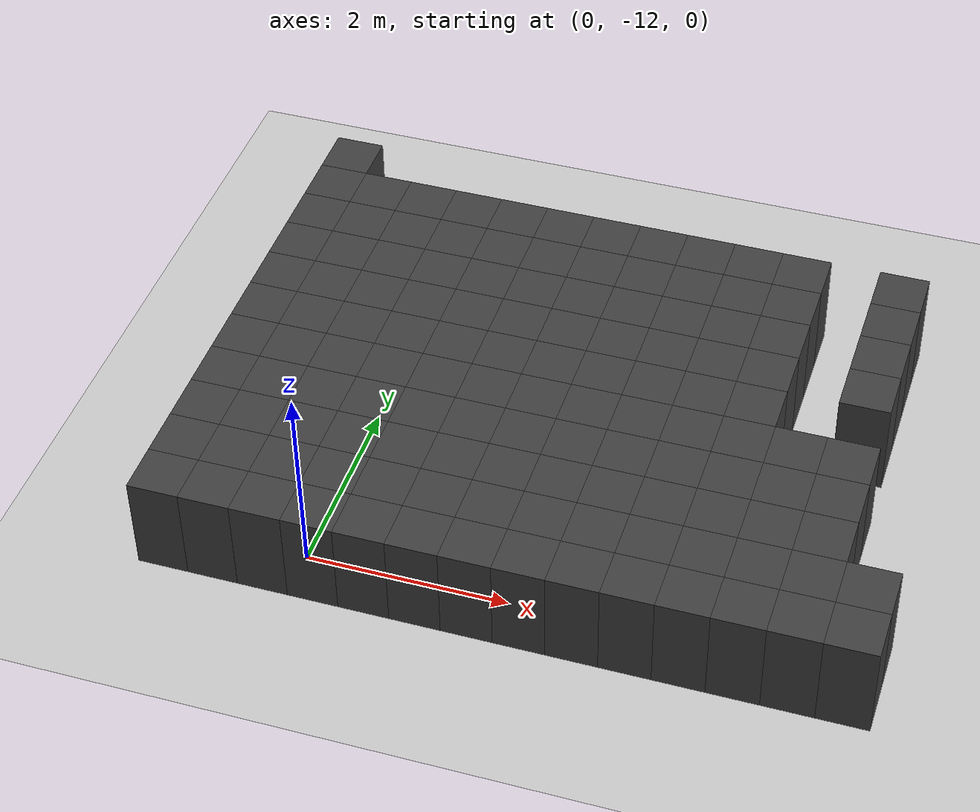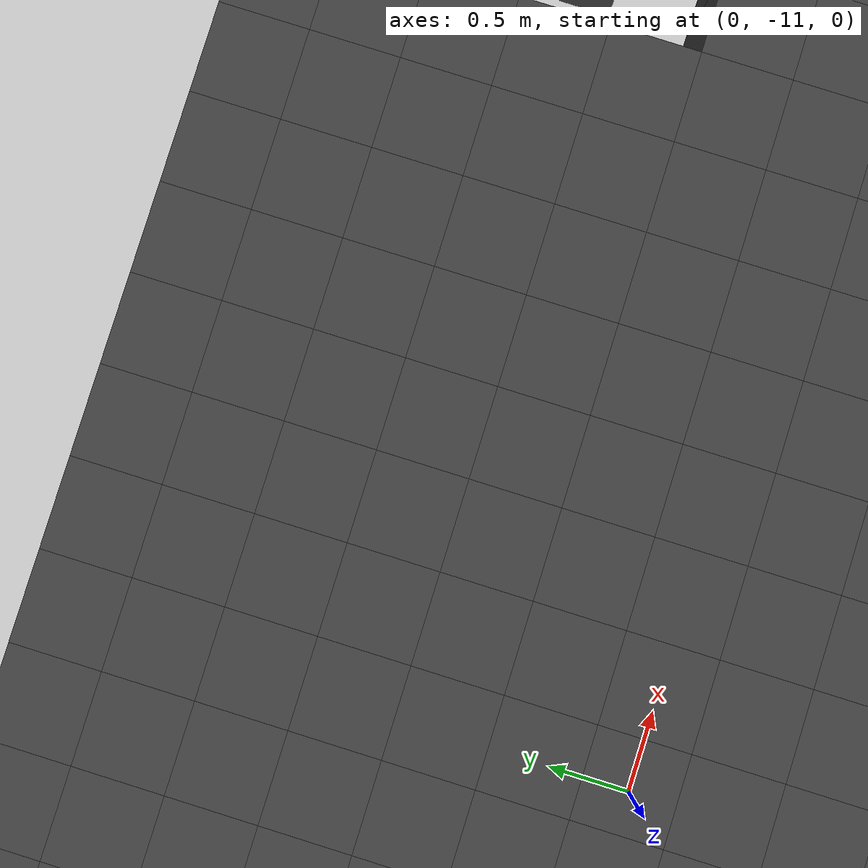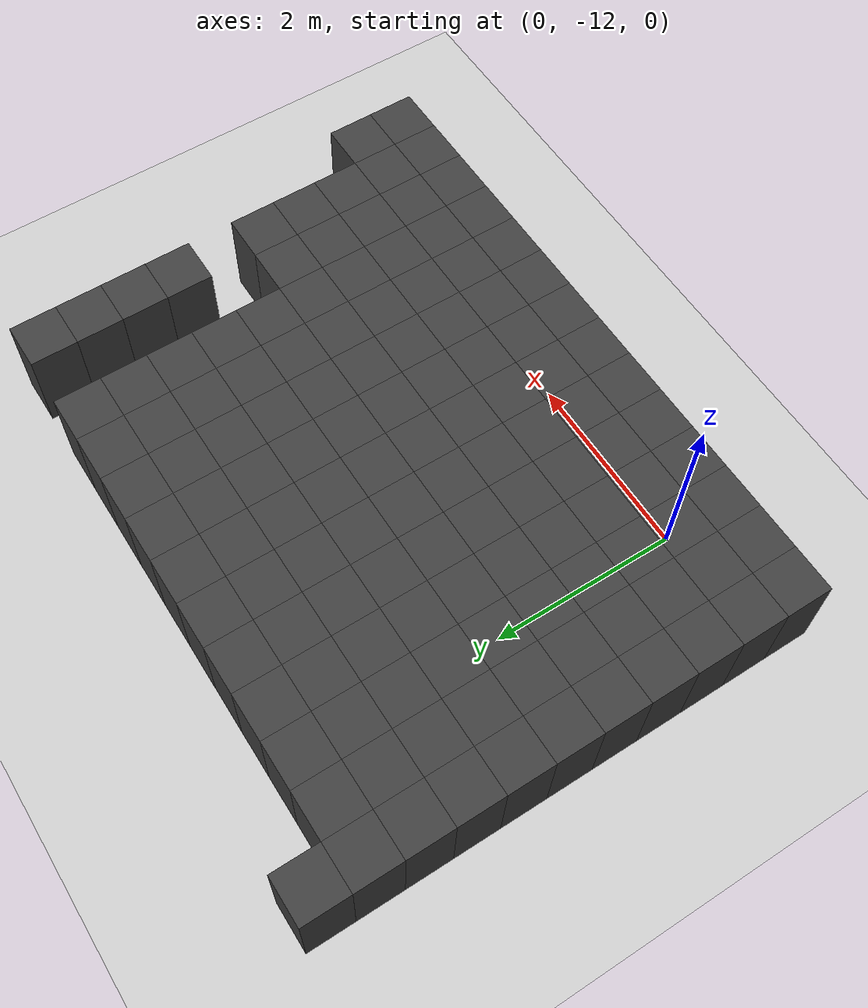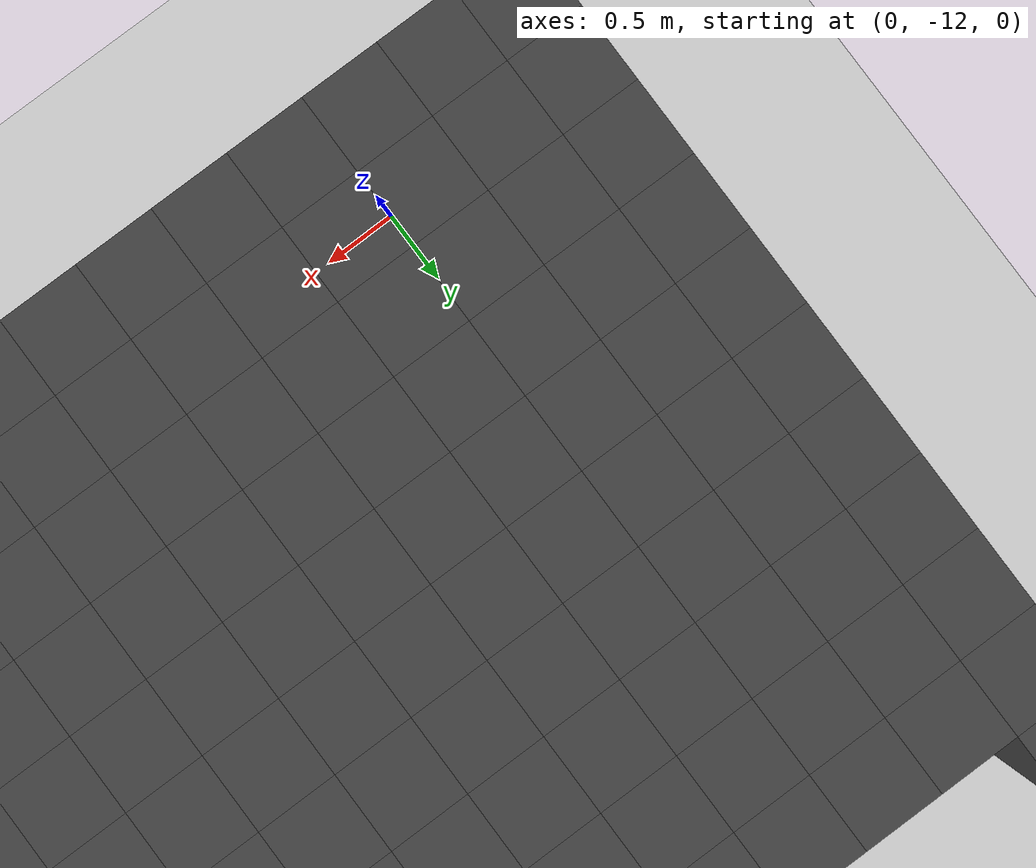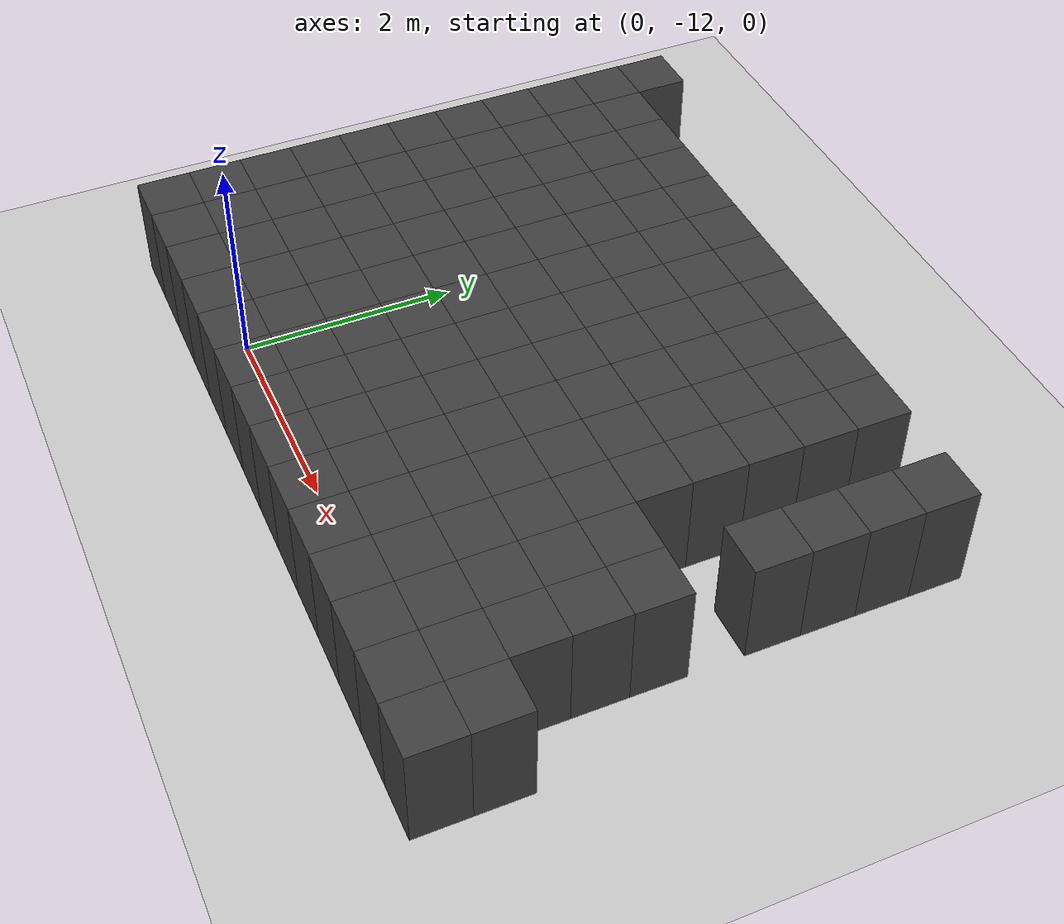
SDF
<sdf version="1.7">
 <world name="map_10777">
  <model name="ground_plane">
   <static>true</static>
   <link name="link">
    <collision name="collision">
     <geometry><plane><normal>0 0 1</normal><size>200 200</size></plane></geometry>
    </collision>
    <visual name="visual">
     <geometry><plane><normal>0 0 1</normal><size>200 200</size></plane></geometry>
     <material><ambient>0.8 0.8 0.8 1</ambient><diffuse>0.8 0.8 0.8 1</diffuse></material>
    </visual>
   </link>
  </model>
  <model name="maze_environment">
   <static>true</static>
   <link name="wall_1711">
    <pose>-1.250 -7.250 0.500 0 0 0</pose>
    <collision name="col"><geometry><box><size>0.5 0.5 1.0</size></box></geometry></collision>
    <visual name="vis">
     <geometry><box><size>0.5 0.5 1.0</size></box></geometry>
     <material><ambient>0.15 0.15 0.15 1</ambient><diffuse>0.25 0.25 0.25 1</diffuse></material>
    </visual>
   </link>
   <link name="wall_1754">
    <pose>-1.250 -7.750 0.500 0 0 0</pose>
    <collision name="col"><geometry><box><size>0.5 0.5 1.0</size></box></geometry></collision>
    <visual name="vis">
     <geometry><box><size>0.5 0.5 1.0</size></box></geometry>
     <material><ambient>0.15 0.15 0.15 1</ambient><diffuse>0.25 0.25 0.25 1</diffuse></material>
    </visual>
   </link>
   <link name="wall_1755">
    <pose>-0.750 -7.750 0.500 0 0 0</pose>
    <collision name="col"><geometry><box><size>0.5 0.5 1.0</size></box></geometry></collision>
    <visual name="vis">
     <geometry><box><size>0.5 0.5 1.0</size></box></geometry>
     <material><ambient>0.15 0.15 0.15 1</ambient><diffuse>0.25 0.25 0.25 1</diffuse></material>
    </visual>
   </link>
   <link name="wall_1756">
    <pose>-0.250 -7.750 0.500 0 0 0</pose>
    <collision name="col"><geometry><box><size>0.5 0.5 1.0</size></box></geometry></collision>
    <visual name="vis">
     <geometry><box><size>0.5 0.5 1.0</size></box></geometry>
     <material><ambient>0.15 0.15 0.15 1</ambient><diffuse>0.25 0.25 0.25 1</diffuse></material>
    </visual>
   </link>
   <link name="wall_1757">
    <pose>0.250 -7.750 0.500 0 0 0</pose>
    <collision name="col"><geometry><box><size>0.5 0.5 1.0</size></box></geometry></collision>
    <visual name="vis">
     <geometry><box><size>0.5 0.5 1.0</size></box></geometry>
     <material><ambient>0.15 0.15 0.15 1</ambient><diffuse>0.25 0.25 0.25 1</diffuse></material>
    </visual>
   </link>
   <link name="wall_1758">
    <pose>0.750 -7.750 0.500 0 0 0</pose>
    <collision name="col"><geometry><box><size>0.5 0.5 1.0</size></box></geometry></collision>
    <visual name="vis">
     <geometry><box><size>0.5 0.5 1.0</size></box></geometry>
     <material><ambient>0.15 0.15 0.15 1</ambient><diffuse>0.25 0.25 0.25 1</diffuse></material>
    </visual>
   </link>
   <link name="wall_1759">
    <pose>1.250 -7.750 0.500 0 0 0</pose>
    <collision name="col"><geometry><box><size>0.5 0.5 1.0</size></box></geometry></collision>
    <visual name="vis">
     <geometry><box><size>0.5 0.5 1.0</size></box></geometry>
     <material><ambient>0.15 0.15 0.15 1</ambient><diffuse>0.25 0.25 0.25 1</diffuse></material>
    </visual>
   </link>
   <link name="wall_1760">
    <pose>1.750 -7.750 0.500 0 0 0</pose>
    <collision name="col"><geometry><box><size>0.5 0.5 1.0</size></box></geometry></collision>
    <visual name="vis">
     <geometry><box><size>0.5 0.5 1.0</size></box></geometry>
     <material><ambient>0.15 0.15 0.15 1</ambient><diffuse>0.25 0.25 0.25 1</diffuse></material>
    </visual>
   </link>
   <link name="wall_1761">
    <pose>2.250 -7.750 0.500 0 0 0</pose>
    <collision name="col"><geometry><box><size>0.5 0.5 1.0</size></box></geometry></collision>
    <visual name="vis">
     <geometry><box><size>0.5 0.5 1.0</size></box></geometry>
     <material><ambient>0.15 0.15 0.15 1</ambient><diffuse>0.25 0.25 0.25 1</diffuse></material>
    </visual>
   </link>
   <link name="wall_1762">
    <pose>2.750 -7.750 0.500 0 0 0</pose>
    <collision name="col"><geometry><box><size>0.5 0.5 1.0</size></box></geometry></collision>
    <visual name="vis">
     <geometry><box><size>0.5 0.5 1.0</size></box></geometry>
     <material><ambient>0.15 0.15 0.15 1</ambient><diffuse>0.25 0.25 0.25 1</diffuse></material>
    </visual>
   </link>
   <link name="wall_1763">
    <pose>3.250 -7.750 0.500 0 0 0</pose>
    <collision name="col"><geometry><box><size>0.5 0.5 1.0</size></box></geometry></collision>
    <visual name="vis">
     <geometry><box><size>0.5 0.5 1.0</size></box></geometry>
     <material><ambient>0.15 0.15 0.15 1</ambient><diffuse>0.25 0.25 0.25 1</diffuse></material>
    </visual>
   </link>
   <link name="wall_1764">
    <pose>3.750 -7.750 0.500 0 0 0</pose>
    <collision name="col"><geometry><box><size>0.5 0.5 1.0</size></box></geometry></collision>
    <visual name="vis">
     <geometry><box><size>0.5 0.5 1.0</size></box></geometry>
     <material><ambient>0.15 0.15 0.15 1</ambient><diffuse>0.25 0.25 0.25 1</diffuse></material>
    </visual>
   </link>
   <link name="wall_1765">
    <pose>4.750 -7.750 0.500 0 0 0</pose>
    <collision name="col"><geometry><box><size>0.5 0.5 1.0</size></box></geometry></collision>
    <visual name="vis">
     <geometry><box><size>0.5 0.5 1.0</size></box></geometry>
     <material><ambient>0.15 0.15 0.15 1</ambient><diffuse>0.25 0.25 0.25 1</diffuse></material>
    </visual>
   </link>
   <link name="wall_1796">
    <pose>-1.250 -8.250 0.500 0 0 0</pose>
    <collision name="col"><geometry><box><size>0.5 0.5 1.0</size></box></geometry></collision>
    <visual name="vis">
     <geometry><box><size>0.5 0.5 1.0</size></box></geometry>
     <material><ambient>0.15 0.15 0.15 1</ambient><diffuse>0.25 0.25 0.25 1</diffuse></material>
    </visual>
   </link>
   <link name="wall_1797">
    <pose>-0.750 -8.250 0.500 0 0 0</pose>
    <collision name="col"><geometry><box><size>0.5 0.5 1.0</size></box></geometry></collision>
    <visual name="vis">
     <geometry><box><size>0.5 0.5 1.0</size></box></geometry>
     <material><ambient>0.15 0.15 0.15 1</ambient><diffuse>0.25 0.25 0.25 1</diffuse></material>
    </visual>
   </link>
   <link name="wall_1798">
    <pose>-0.250 -8.250 0.500 0 0 0</pose>
    <collision name="col"><geometry><box><size>0.5 0.5 1.0</size></box></geometry></collision>
    <visual name="vis">
     <geometry><box><size>0.5 0.5 1.0</size></box></geometry>
     <material><ambient>0.15 0.15 0.15 1</ambient><diffuse>0.25 0.25 0.25 1</diffuse></material>
    </visual>
   </link>
   <link name="wall_1799">
    <pose>0.250 -8.250 0.500 0 0 0</pose>
    <collision name="col"><geometry><box><size>0.5 0.5 1.0</size></box></geometry></collision>
    <visual name="vis">
     <geometry><box><size>0.5 0.5 1.0</size></box></geometry>
     <material><ambient>0.15 0.15 0.15 1</ambient><diffuse>0.25 0.25 0.25 1</diffuse></material>
    </visual>
   </link>
   <link name="wall_1800">
    <pose>0.750 -8.250 0.500 0 0 0</pose>
    <collision name="col"><geometry><box><size>0.5 0.5 1.0</size></box></geometry></collision>
    <visual name="vis">
     <geometry><box><size>0.5 0.5 1.0</size></box></geometry>
     <material><ambient>0.15 0.15 0.15 1</ambient><diffuse>0.25 0.25 0.25 1</diffuse></material>
    </visual>
   </link>
   <link name="wall_1801">
    <pose>1.250 -8.250 0.500 0 0 0</pose>
    <collision name="col"><geometry><box><size>0.5 0.5 1.0</size></box></geometry></collision>
    <visual name="vis">
     <geometry><box><size>0.5 0.5 1.0</size></box></geometry>
     <material><ambient>0.15 0.15 0.15 1</ambient><diffuse>0.25 0.25 0.25 1</diffuse></material>
    </visual>
   </link>
   <link name="wall_1802">
    <pose>1.750 -8.250 0.500 0 0 0</pose>
    <collision name="col"><geometry><box><size>0.5 0.5 1.0</size></box></geometry></collision>
    <visual name="vis">
     <geometry><box><size>0.5 0.5 1.0</size></box></geometry>
     <material><ambient>0.15 0.15 0.15 1</ambient><diffuse>0.25 0.25 0.25 1</diffuse></material>
    </visual>
   </link>
   <link name="wall_1803">
    <pose>2.250 -8.250 0.500 0 0 0</pose>
    <collision name="col"><geometry><box><size>0.5 0.5 1.0</size></box></geometry></collision>
    <visual name="vis">
     <geometry><box><size>0.5 0.5 1.0</size></box></geometry>
     <material><ambient>0.15 0.15 0.15 1</ambient><diffuse>0.25 0.25 0.25 1</diffuse></material>
    </visual>
   </link>
   <link name="wall_1804">
    <pose>2.750 -8.250 0.500 0 0 0</pose>
    <collision name="col"><geometry><box><size>0.5 0.5 1.0</size></box></geometry></collision>
    <visual name="vis">
     <geometry><box><size>0.5 0.5 1.0</size></box></geometry>
     <material><ambient>0.15 0.15 0.15 1</ambient><diffuse>0.25 0.25 0.25 1</diffuse></material>
    </visual>
   </link>
   <link name="wall_1805">
    <pose>3.250 -8.250 0.500 0 0 0</pose>
    <collision name="col"><geometry><box><size>0.5 0.5 1.0</size></box></geometry></collision>
    <visual name="vis">
     <geometry><box><size>0.5 0.5 1.0</size></box></geometry>
     <material><ambient>0.15 0.15 0.15 1</ambient><diffuse>0.25 0.25 0.25 1</diffuse></material>
    </visual>
   </link>
   <link name="wall_1806">
    <pose>3.750 -8.250 0.500 0 0 0</pose>
    <collision name="col"><geometry><box><size>0.5 0.5 1.0</size></box></geometry></collision>
    <visual name="vis">
     <geometry><box><size>0.5 0.5 1.0</size></box></geometry>
     <material><ambient>0.15 0.15 0.15 1</ambient><diffuse>0.25 0.25 0.25 1</diffuse></material>
    </visual>
   </link>
   <link name="wall_1807">
    <pose>4.750 -8.250 0.500 0 0 0</pose>
    <collision name="col"><geometry><box><size>0.5 0.5 1.0</size></box></geometry></collision>
    <visual name="vis">
     <geometry><box><size>0.5 0.5 1.0</size></box></geometry>
     <material><ambient>0.15 0.15 0.15 1</ambient><diffuse>0.25 0.25 0.25 1</diffuse></material>
    </visual>
   </link>
   <link name="wall_1838">
    <pose>-1.250 -8.750 0.500 0 0 0</pose>
    <collision name="col"><geometry><box><size>0.5 0.5 1.0</size></box></geometry></collision>
    <visual name="vis">
     <geometry><box><size>0.5 0.5 1.0</size></box></geometry>
     <material><ambient>0.15 0.15 0.15 1</ambient><diffuse>0.25 0.25 0.25 1</diffuse></material>
    </visual>
   </link>
   <link name="wall_1839">
    <pose>-0.750 -8.750 0.500 0 0 0</pose>
    <collision name="col"><geometry><box><size>0.5 0.5 1.0</size></box></geometry></collision>
    <visual name="vis">
     <geometry><box><size>0.5 0.5 1.0</size></box></geometry>
     <material><ambient>0.15 0.15 0.15 1</ambient><diffuse>0.25 0.25 0.25 1</diffuse></material>
    </visual>
   </link>
   <link name="wall_1840">
    <pose>-0.250 -8.750 0.500 0 0 0</pose>
    <collision name="col"><geometry><box><size>0.5 0.5 1.0</size></box></geometry></collision>
    <visual name="vis">
     <geometry><box><size>0.5 0.5 1.0</size></box></geometry>
     <material><ambient>0.15 0.15 0.15 1</ambient><diffuse>0.25 0.25 0.25 1</diffuse></material>
    </visual>
   </link>
   <link name="wall_1841">
    <pose>0.250 -8.750 0.500 0 0 0</pose>
    <collision name="col"><geometry><box><size>0.5 0.5 1.0</size></box></geometry></collision>
    <visual name="vis">
     <geometry><box><size>0.5 0.5 1.0</size></box></geometry>
     <material><ambient>0.15 0.15 0.15 1</ambient><diffuse>0.25 0.25 0.25 1</diffuse></material>
    </visual>
   </link>
   <link name="wall_1842">
    <pose>0.750 -8.750 0.500 0 0 0</pose>
    <collision name="col"><geometry><box><size>0.5 0.5 1.0</size></box></geometry></collision>
    <visual name="vis">
     <geometry><box><size>0.5 0.5 1.0</size></box></geometry>
     <material><ambient>0.15 0.15 0.15 1</ambient><diffuse>0.25 0.25 0.25 1</diffuse></material>
    </visual>
   </link>
   <link name="wall_1843">
    <pose>1.250 -8.750 0.500 0 0 0</pose>
    <collision name="col"><geometry><box><size>0.5 0.5 1.0</size></box></geometry></collision>
    <visual name="vis">
     <geometry><box><size>0.5 0.5 1.0</size></box></geometry>
     <material><ambient>0.15 0.15 0.15 1</ambient><diffuse>0.25 0.25 0.25 1</diffuse></material>
    </visual>
   </link>
   <link name="wall_1844">
    <pose>1.750 -8.750 0.500 0 0 0</pose>
    <collision name="col"><geometry><box><size>0.5 0.5 1.0</size></box></geometry></collision>
    <visual name="vis">
     <geometry><box><size>0.5 0.5 1.0</size></box></geometry>
     <material><ambient>0.15 0.15 0.15 1</ambient><diffuse>0.25 0.25 0.25 1</diffuse></material>
    </visual>
   </link>
   <link name="wall_1845">
    <pose>2.250 -8.750 0.500 0 0 0</pose>
    <collision name="col"><geometry><box><size>0.5 0.5 1.0</size></box></geometry></collision>
    <visual name="vis">
     <geometry><box><size>0.5 0.5 1.0</size></box></geometry>
     <material><ambient>0.15 0.15 0.15 1</ambient><diffuse>0.25 0.25 0.25 1</diffuse></material>
    </visual>
   </link>
   <link name="wall_1846">
    <pose>2.750 -8.750 0.500 0 0 0</pose>
    <collision name="col"><geometry><box><size>0.5 0.5 1.0</size></box></geometry></collision>
    <visual name="vis">
     <geometry><box><size>0.5 0.5 1.0</size></box></geometry>
     <material><ambient>0.15 0.15 0.15 1</ambient><diffuse>0.25 0.25 0.25 1</diffuse></material>
    </visual>
   </link>
   <link name="wall_1847">
    <pose>3.250 -8.750 0.500 0 0 0</pose>
    <collision name="col"><geometry><box><size>0.5 0.5 1.0</size></box></geometry></collision>
    <visual name="vis">
     <geometry><box><size>0.5 0.5 1.0</size></box></geometry>
     <material><ambient>0.15 0.15 0.15 1</ambient><diffuse>0.25 0.25 0.25 1</diffuse></material>
    </visual>
   </link>
   <link name="wall_1848">
    <pose>3.750 -8.750 0.500 0 0 0</pose>
    <collision name="col"><geometry><box><size>0.5 0.5 1.0</size></box></geometry></collision>
    <visual name="vis">
     <geometry><box><size>0.5 0.5 1.0</size></box></geometry>
     <material><ambient>0.15 0.15 0.15 1</ambient><diffuse>0.25 0.25 0.25 1</diffuse></material>
    </visual>
   </link>
   <link name="wall_1849">
    <pose>4.750 -8.750 0.500 0 0 0</pose>
    <collision name="col"><geometry><box><size>0.5 0.5 1.0</size></box></geometry></collision>
    <visual name="vis">
     <geometry><box><size>0.5 0.5 1.0</size></box></geometry>
     <material><ambient>0.15 0.15 0.15 1</ambient><diffuse>0.25 0.25 0.25 1</diffuse></material>
    </visual>
   </link>
   <link name="wall_1880">
    <pose>-1.250 -9.250 0.500 0 0 0</pose>
    <collision name="col"><geometry><box><size>0.5 0.5 1.0</size></box></geometry></collision>
    <visual name="vis">
     <geometry><box><size>0.5 0.5 1.0</size></box></geometry>
     <material><ambient>0.15 0.15 0.15 1</ambient><diffuse>0.25 0.25 0.25 1</diffuse></material>
    </visual>
   </link>
   <link name="wall_1881">
    <pose>-0.750 -9.250 0.500 0 0 0</pose>
    <collision name="col"><geometry><box><size>0.5 0.5 1.0</size></box></geometry></collision>
    <visual name="vis">
     <geometry><box><size>0.5 0.5 1.0</size></box></geometry>
     <material><ambient>0.15 0.15 0.15 1</ambient><diffuse>0.25 0.25 0.25 1</diffuse></material>
    </visual>
   </link>
   <link name="wall_1882">
    <pose>-0.250 -9.250 0.500 0 0 0</pose>
    <collision name="col"><geometry><box><size>0.5 0.5 1.0</size></box></geometry></collision>
    <visual name="vis">
     <geometry><box><size>0.5 0.5 1.0</size></box></geometry>
     <material><ambient>0.15 0.15 0.15 1</ambient><diffuse>0.25 0.25 0.25 1</diffuse></material>
    </visual>
   </link>
   <link name="wall_1883">
    <pose>0.250 -9.250 0.500 0 0 0</pose>
    <collision name="col"><geometry><box><size>0.5 0.5 1.0</size></box></geometry></collision>
    <visual name="vis">
     <geometry><box><size>0.5 0.5 1.0</size></box></geometry>
     <material><ambient>0.15 0.15 0.15 1</ambient><diffuse>0.25 0.25 0.25 1</diffuse></material>
    </visual>
   </link>
   <link name="wall_1884">
    <pose>0.750 -9.250 0.500 0 0 0</pose>
    <collision name="col"><geometry><box><size>0.5 0.5 1.0</size></box></geometry></collision>
    <visual name="vis">
     <geometry><box><size>0.5 0.5 1.0</size></box></geometry>
     <material><ambient>0.15 0.15 0.15 1</ambient><diffuse>0.25 0.25 0.25 1</diffuse></material>
    </visual>
   </link>
   <link name="wall_1885">
    <pose>1.250 -9.250 0.500 0 0 0</pose>
    <collision name="col"><geometry><box><size>0.5 0.5 1.0</size></box></geometry></collision>
    <visual name="vis">
     <geometry><box><size>0.5 0.5 1.0</size></box></geometry>
     <material><ambient>0.15 0.15 0.15 1</ambient><diffuse>0.25 0.25 0.25 1</diffuse></material>
    </visual>
   </link>
   <link name="wall_1886">
    <pose>1.750 -9.250 0.500 0 0 0</pose>
    <collision name="col"><geometry><box><size>0.5 0.5 1.0</size></box></geometry></collision>
    <visual name="vis">
     <geometry><box><size>0.5 0.5 1.0</size></box></geometry>
     <material><ambient>0.15 0.15 0.15 1</ambient><diffuse>0.25 0.25 0.25 1</diffuse></material>
    </visual>
   </link>
   <link name="wall_1887">
    <pose>2.250 -9.250 0.500 0 0 0</pose>
    <collision name="col"><geometry><box><size>0.5 0.5 1.0</size></box></geometry></collision>
    <visual name="vis">
     <geometry><box><size>0.5 0.5 1.0</size></box></geometry>
     <material><ambient>0.15 0.15 0.15 1</ambient><diffuse>0.25 0.25 0.25 1</diffuse></material>
    </visual>
   </link>
   <link name="wall_1888">
    <pose>2.750 -9.250 0.500 0 0 0</pose>
    <collision name="col"><geometry><box><size>0.5 0.5 1.0</size></box></geometry></collision>
    <visual name="vis">
     <geometry><box><size>0.5 0.5 1.0</size></box></geometry>
     <material><ambient>0.15 0.15 0.15 1</ambient><diffuse>0.25 0.25 0.25 1</diffuse></material>
    </visual>
   </link>
   <link name="wall_1889">
    <pose>3.250 -9.250 0.500 0 0 0</pose>
    <collision name="col"><geometry><box><size>0.5 0.5 1.0</size></box></geometry></collision>
    <visual name="vis">
     <geometry><box><size>0.5 0.5 1.0</size></box></geometry>
     <material><ambient>0.15 0.15 0.15 1</ambient><diffuse>0.25 0.25 0.25 1</diffuse></material>
    </visual>
   </link>
   <link name="wall_1890">
    <pose>3.750 -9.250 0.500 0 0 0</pose>
    <collision name="col"><geometry><box><size>0.5 0.5 1.0</size></box></geometry></collision>
    <visual name="vis">
     <geometry><box><size>0.5 0.5 1.0</size></box></geometry>
     <material><ambient>0.15 0.15 0.15 1</ambient><diffuse>0.25 0.25 0.25 1</diffuse></material>
    </visual>
   </link>
   <link name="wall_1891">
    <pose>4.750 -9.250 0.500 0 0 0</pose>
    <collision name="col"><geometry><box><size>0.5 0.5 1.0</size></box></geometry></collision>
    <visual name="vis">
     <geometry><box><size>0.5 0.5 1.0</size></box></geometry>
     <material><ambient>0.15 0.15 0.15 1</ambient><diffuse>0.25 0.25 0.25 1</diffuse></material>
    </visual>
   </link>
   <link name="wall_1922">
    <pose>-1.250 -9.750 0.500 0 0 0</pose>
    <collision name="col"><geometry><box><size>0.5 0.5 1.0</size></box></geometry></collision>
    <visual name="vis">
     <geometry><box><size>0.5 0.5 1.0</size></box></geometry>
     <material><ambient>0.15 0.15 0.15 1</ambient><diffuse>0.25 0.25 0.25 1</diffuse></material>
    </visual>
   </link>
   <link name="wall_1923">
    <pose>-0.750 -9.750 0.500 0 0 0</pose>
    <collision name="col"><geometry><box><size>0.5 0.5 1.0</size></box></geometry></collision>
    <visual name="vis">
     <geometry><box><size>0.5 0.5 1.0</size></box></geometry>
     <material><ambient>0.15 0.15 0.15 1</ambient><diffuse>0.25 0.25 0.25 1</diffuse></material>
    </visual>
   </link>
   <link name="wall_1924">
    <pose>-0.250 -9.750 0.500 0 0 0</pose>
    <collision name="col"><geometry><box><size>0.5 0.5 1.0</size></box></geometry></collision>
    <visual name="vis">
     <geometry><box><size>0.5 0.5 1.0</size></box></geometry>
     <material><ambient>0.15 0.15 0.15 1</ambient><diffuse>0.25 0.25 0.25 1</diffuse></material>
    </visual>
   </link>
   <link name="wall_1925">
    <pose>0.250 -9.750 0.500 0 0 0</pose>
    <collision name="col"><geometry><box><size>0.5 0.5 1.0</size></box></geometry></collision>
    <visual name="vis">
     <geometry><box><size>0.5 0.5 1.0</size></box></geometry>
     <material><ambient>0.15 0.15 0.15 1</ambient><diffuse>0.25 0.25 0.25 1</diffuse></material>
    </visual>
   </link>
   <link name="wall_1926">
    <pose>0.750 -9.750 0.500 0 0 0</pose>
    <collision name="col"><geometry><box><size>0.5 0.5 1.0</size></box></geometry></collision>
    <visual name="vis">
     <geometry><box><size>0.5 0.5 1.0</size></box></geometry>
     <material><ambient>0.15 0.15 0.15 1</ambient><diffuse>0.25 0.25 0.25 1</diffuse></material>
    </visual>
   </link>
   <link name="wall_1927">
    <pose>1.250 -9.750 0.500 0 0 0</pose>
    <collision name="col"><geometry><box><size>0.5 0.5 1.0</size></box></geometry></collision>
    <visual name="vis">
     <geometry><box><size>0.5 0.5 1.0</size></box></geometry>
     <material><ambient>0.15 0.15 0.15 1</ambient><diffuse>0.25 0.25 0.25 1</diffuse></material>
    </visual>
   </link>
   <link name="wall_1928">
    <pose>1.750 -9.750 0.500 0 0 0</pose>
    <collision name="col"><geometry><box><size>0.5 0.5 1.0</size></box></geometry></collision>
    <visual name="vis">
     <geometry><box><size>0.5 0.5 1.0</size></box></geometry>
     <material><ambient>0.15 0.15 0.15 1</ambient><diffuse>0.25 0.25 0.25 1</diffuse></material>
    </visual>
   </link>
   <link name="wall_1929">
    <pose>2.250 -9.750 0.500 0 0 0</pose>
    <collision name="col"><geometry><box><size>0.5 0.5 1.0</size></box></geometry></collision>
    <visual name="vis">
     <geometry><box><size>0.5 0.5 1.0</size></box></geometry>
     <material><ambient>0.15 0.15 0.15 1</ambient><diffuse>0.25 0.25 0.25 1</diffuse></material>
    </visual>
   </link>
   <link name="wall_1930">
    <pose>2.750 -9.750 0.500 0 0 0</pose>
    <collision name="col"><geometry><box><size>0.5 0.5 1.0</size></box></geometry></collision>
    <visual name="vis">
     <geometry><box><size>0.5 0.5 1.0</size></box></geometry>
     <material><ambient>0.15 0.15 0.15 1</ambient><diffuse>0.25 0.25 0.25 1</diffuse></material>
    </visual>
   </link>
   <link name="wall_1931">
    <pose>3.250 -9.750 0.500 0 0 0</pose>
    <collision name="col"><geometry><box><size>0.5 0.5 1.0</size></box></geometry></collision>
    <visual name="vis">
     <geometry><box><size>0.5 0.5 1.0</size></box></geometry>
     <material><ambient>0.15 0.15 0.15 1</ambient><diffuse>0.25 0.25 0.25 1</diffuse></material>
    </visual>
   </link>
   <link name="wall_1932">
    <pose>3.750 -9.750 0.500 0 0 0</pose>
    <collision name="col"><geometry><box><size>0.5 0.5 1.0</size></box></geometry></collision>
    <visual name="vis">
     <geometry><box><size>0.5 0.5 1.0</size></box></geometry>
     <material><ambient>0.15 0.15 0.15 1</ambient><diffuse>0.25 0.25 0.25 1</diffuse></material>
    </visual>
   </link>
   <link name="wall_1963">
    <pose>-1.250 -10.250 0.500 0 0 0</pose>
    <collision name="col"><geometry><box><size>0.5 0.5 1.0</size></box></geometry></collision>
    <visual name="vis">
     <geometry><box><size>0.5 0.5 1.0</size></box></geometry>
     <material><ambient>0.15 0.15 0.15 1</ambient><diffuse>0.25 0.25 0.25 1</diffuse></material>
    </visual>
   </link>
   <link name="wall_1964">
    <pose>-0.750 -10.250 0.500 0 0 0</pose>
    <collision name="col"><geometry><box><size>0.5 0.5 1.0</size></box></geometry></collision>
    <visual name="vis">
     <geometry><box><size>0.5 0.5 1.0</size></box></geometry>
     <material><ambient>0.15 0.15 0.15 1</ambient><diffuse>0.25 0.25 0.25 1</diffuse></material>
    </visual>
   </link>
   <link name="wall_1965">
    <pose>-0.250 -10.250 0.500 0 0 0</pose>
    <collision name="col"><geometry><box><size>0.5 0.5 1.0</size></box></geometry></collision>
    <visual name="vis">
     <geometry><box><size>0.5 0.5 1.0</size></box></geometry>
     <material><ambient>0.15 0.15 0.15 1</ambient><diffuse>0.25 0.25 0.25 1</diffuse></material>
    </visual>
   </link>
   <link name="wall_1966">
    <pose>0.250 -10.250 0.500 0 0 0</pose>
    <collision name="col"><geometry><box><size>0.5 0.5 1.0</size></box></geometry></collision>
    <visual name="vis">
     <geometry><box><size>0.5 0.5 1.0</size></box></geometry>
     <material><ambient>0.15 0.15 0.15 1</ambient><diffuse>0.25 0.25 0.25 1</diffuse></material>
    </visual>
   </link>
   <link name="wall_1967">
    <pose>0.750 -10.250 0.500 0 0 0</pose>
    <collision name="col"><geometry><box><size>0.5 0.5 1.0</size></box></geometry></collision>
    <visual name="vis">
     <geometry><box><size>0.5 0.5 1.0</size></box></geometry>
     <material><ambient>0.15 0.15 0.15 1</ambient><diffuse>0.25 0.25 0.25 1</diffuse></material>
    </visual>
   </link>
   <link name="wall_1968">
    <pose>1.250 -10.250 0.500 0 0 0</pose>
    <collision name="col"><geometry><box><size>0.5 0.5 1.0</size></box></geometry></collision>
    <visual name="vis">
     <geometry><box><size>0.5 0.5 1.0</size></box></geometry>
     <material><ambient>0.15 0.15 0.15 1</ambient><diffuse>0.25 0.25 0.25 1</diffuse></material>
    </visual>
   </link>
   <link name="wall_1969">
    <pose>1.750 -10.250 0.500 0 0 0</pose>
    <collision name="col"><geometry><box><size>0.5 0.5 1.0</size></box></geometry></collision>
    <visual name="vis">
     <geometry><box><size>0.5 0.5 1.0</size></box></geometry>
     <material><ambient>0.15 0.15 0.15 1</ambient><diffuse>0.25 0.25 0.25 1</diffuse></material>
    </visual>
   </link>
   <link name="wall_1970">
    <pose>2.250 -10.250 0.500 0 0 0</pose>
    <collision name="col"><geometry><box><size>0.5 0.5 1.0</size></box></geometry></collision>
    <visual name="vis">
     <geometry><box><size>0.5 0.5 1.0</size></box></geometry>
     <material><ambient>0.15 0.15 0.15 1</ambient><diffuse>0.25 0.25 0.25 1</diffuse></material>
    </visual>
   </link>
   <link name="wall_1971">
    <pose>2.750 -10.250 0.500 0 0 0</pose>
    <collision name="col"><geometry><box><size>0.5 0.5 1.0</size></box></geometry></collision>
    <visual name="vis">
     <geometry><box><size>0.5 0.5 1.0</size></box></geometry>
     <material><ambient>0.15 0.15 0.15 1</ambient><diffuse>0.25 0.25 0.25 1</diffuse></material>
    </visual>
   </link>
   <link name="wall_1972">
    <pose>3.250 -10.250 0.500 0 0 0</pose>
    <collision name="col"><geometry><box><size>0.5 0.5 1.0</size></box></geometry></collision>
    <visual name="vis">
     <geometry><box><size>0.5 0.5 1.0</size></box></geometry>
     <material><ambient>0.15 0.15 0.15 1</ambient><diffuse>0.25 0.25 0.25 1</diffuse></material>
    </visual>
   </link>
   <link name="wall_1973">
    <pose>3.750 -10.250 0.500 0 0 0</pose>
    <collision name="col"><geometry><box><size>0.5 0.5 1.0</size></box></geometry></collision>
    <visual name="vis">
     <geometry><box><size>0.5 0.5 1.0</size></box></geometry>
     <material><ambient>0.15 0.15 0.15 1</ambient><diffuse>0.25 0.25 0.25 1</diffuse></material>
    </visual>
   </link>
   <link name="wall_1974">
    <pose>4.250 -10.250 0.500 0 0 0</pose>
    <collision name="col"><geometry><box><size>0.5 0.5 1.0</size></box></geometry></collision>
    <visual name="vis">
     <geometry><box><size>0.5 0.5 1.0</size></box></geometry>
     <material><ambient>0.15 0.15 0.15 1</ambient><diffuse>0.25 0.25 0.25 1</diffuse></material>
    </visual>
   </link>
   <link name="wall_1975">
    <pose>4.750 -10.250 0.500 0 0 0</pose>
    <collision name="col"><geometry><box><size>0.5 0.5 1.0</size></box></geometry></collision>
    <visual name="vis">
     <geometry><box><size>0.5 0.5 1.0</size></box></geometry>
     <material><ambient>0.15 0.15 0.15 1</ambient><diffuse>0.25 0.25 0.25 1</diffuse></material>
    </visual>
   </link>
   <link name="wall_2006">
    <pose>-1.250 -10.750 0.500 0 0 0</pose>
    <collision name="col"><geometry><box><size>0.5 0.5 1.0</size></box></geometry></collision>
    <visual name="vis">
     <geometry><box><size>0.5 0.5 1.0</size></box></geometry>
     <material><ambient>0.15 0.15 0.15 1</ambient><diffuse>0.25 0.25 0.25 1</diffuse></material>
    </visual>
   </link>
   <link name="wall_2007">
    <pose>-0.750 -10.750 0.500 0 0 0</pose>
    <collision name="col"><geometry><box><size>0.5 0.5 1.0</size></box></geometry></collision>
    <visual name="vis">
     <geometry><box><size>0.5 0.5 1.0</size></box></geometry>
     <material><ambient>0.15 0.15 0.15 1</ambient><diffuse>0.25 0.25 0.25 1</diffuse></material>
    </visual>
   </link>
   <link name="wall_2008">
    <pose>-0.250 -10.750 0.500 0 0 0</pose>
    <collision name="col"><geometry><box><size>0.5 0.5 1.0</size></box></geometry></collision>
    <visual name="vis">
     <geometry><box><size>0.5 0.5 1.0</size></box></geometry>
     <material><ambient>0.15 0.15 0.15 1</ambient><diffuse>0.25 0.25 0.25 1</diffuse></material>
    </visual>
   </link>
   <link name="wall_2009">
    <pose>0.250 -10.750 0.500 0 0 0</pose>
    <collision name="col"><geometry><box><size>0.5 0.5 1.0</size></box></geometry></collision>
    <visual name="vis">
     <geometry><box><size>0.5 0.5 1.0</size></box></geometry>
     <material><ambient>0.15 0.15 0.15 1</ambient><diffuse>0.25 0.25 0.25 1</diffuse></material>
    </visual>
   </link>
   <link name="wall_2010">
    <pose>0.750 -10.750 0.500 0 0 0</pose>
    <collision name="col"><geometry><box><size>0.5 0.5 1.0</size></box></geometry></collision>
    <visual name="vis">
     <geometry><box><size>0.5 0.5 1.0</size></box></geometry>
     <material><ambient>0.15 0.15 0.15 1</ambient><diffuse>0.25 0.25 0.25 1</diffuse></material>
    </visual>
   </link>
   <link name="wall_2011">
    <pose>1.250 -10.750 0.500 0 0 0</pose>
    <collision name="col"><geometry><box><size>0.5 0.5 1.0</size></box></geometry></collision>
    <visual name="vis">
     <geometry><box><size>0.5 0.5 1.0</size></box></geometry>
     <material><ambient>0.15 0.15 0.15 1</ambient><diffuse>0.25 0.25 0.25 1</diffuse></material>
    </visual>
   </link>
   <link name="wall_2012">
    <pose>1.750 -10.750 0.500 0 0 0</pose>
    <collision name="col"><geometry><box><size>0.5 0.5 1.0</size></box></geometry></collision>
    <visual name="vis">
     <geometry><box><size>0.5 0.5 1.0</size></box></geometry>
     <material><ambient>0.15 0.15 0.15 1</ambient><diffuse>0.25 0.25 0.25 1</diffuse></material>
    </visual>
   </link>
   <link name="wall_2013">
    <pose>2.250 -10.750 0.500 0 0 0</pose>
    <collision name="col"><geometry><box><size>0.5 0.5 1.0</size></box></geometry></collision>
    <visual name="vis">
     <geometry><box><size>0.5 0.5 1.0</size></box></geometry>
     <material><ambient>0.15 0.15 0.15 1</ambient><diffuse>0.25 0.25 0.25 1</diffuse></material>
    </visual>
   </link>
   <link name="wall_2014">
    <pose>2.750 -10.750 0.500 0 0 0</pose>
    <collision name="col"><geometry><box><size>0.5 0.5 1.0</size></box></geometry></collision>
    <visual name="vis">
     <geometry><box><size>0.5 0.5 1.0</size></box></geometry>
     <material><ambient>0.15 0.15 0.15 1</ambient><diffuse>0.25 0.25 0.25 1</diffuse></material>
    </visual>
   </link>
   <link name="wall_2015">
    <pose>3.250 -10.750 0.500 0 0 0</pose>
    <collision name="col"><geometry><box><size>0.5 0.5 1.0</size></box></geometry></collision>
    <visual name="vis">
     <geometry><box><size>0.5 0.5 1.0</size></box></geometry>
     <material><ambient>0.15 0.15 0.15 1</ambient><diffuse>0.25 0.25 0.25 1</diffuse></material>
    </visual>
   </link>
   <link name="wall_2016">
    <pose>3.750 -10.750 0.500 0 0 0</pose>
    <collision name="col"><geometry><box><size>0.5 0.5 1.0</size></box></geometry></collision>
    <visual name="vis">
     <geometry><box><size>0.5 0.5 1.0</size></box></geometry>
     <material><ambient>0.15 0.15 0.15 1</ambient><diffuse>0.25 0.25 0.25 1</diffuse></material>
    </visual>
   </link>
   <link name="wall_2017">
    <pose>4.250 -10.750 0.500 0 0 0</pose>
    <collision name="col"><geometry><box><size>0.5 0.5 1.0</size></box></geometry></collision>
    <visual name="vis">
     <geometry><box><size>0.5 0.5 1.0</size></box></geometry>
     <material><ambient>0.15 0.15 0.15 1</ambient><diffuse>0.25 0.25 0.25 1</diffuse></material>
    </visual>
   </link>
   <link name="wall_2018">
    <pose>4.750 -10.750 0.500 0 0 0</pose>
    <collision name="col"><geometry><box><size>0.5 0.5 1.0</size></box></geometry></collision>
    <visual name="vis">
     <geometry><box><size>0.5 0.5 1.0</size></box></geometry>
     <material><ambient>0.15 0.15 0.15 1</ambient><diffuse>0.25 0.25 0.25 1</diffuse></material>
    </visual>
   </link>
   <link name="wall_2046">
    <pose>-1.250 -11.250 0.500 0 0 0</pose>
    <collision name="col"><geometry><box><size>0.5 0.5 1.0</size></box></geometry></collision>
    <visual name="vis">
     <geometry><box><size>0.5 0.5 1.0</size></box></geometry>
     <material><ambient>0.15 0.15 0.15 1</ambient><diffuse>0.25 0.25 0.25 1</diffuse></material>
    </visual>
   </link>
   <link name="wall_2047">
    <pose>-0.750 -11.250 0.500 0 0 0</pose>
    <collision name="col"><geometry><box><size>0.5 0.5 1.0</size></box></geometry></collision>
    <visual name="vis">
     <geometry><box><size>0.5 0.5 1.0</size></box></geometry>
     <material><ambient>0.15 0.15 0.15 1</ambient><diffuse>0.25 0.25 0.25 1</diffuse></material>
    </visual>
   </link>
   <link name="wall_2048">
    <pose>-0.250 -11.250 0.500 0 0 0</pose>
    <collision name="col"><geometry><box><size>0.5 0.5 1.0</size></box></geometry></collision>
    <visual name="vis">
     <geometry><box><size>0.5 0.5 1.0</size></box></geometry>
     <material><ambient>0.15 0.15 0.15 1</ambient><diffuse>0.25 0.25 0.25 1</diffuse></material>
    </visual>
   </link>
   <link name="wall_2049">
    <pose>0.250 -11.250 0.500 0 0 0</pose>
    <collision name="col"><geometry><box><size>0.5 0.5 1.0</size></box></geometry></collision>
    <visual name="vis">
     <geometry><box><size>0.5 0.5 1.0</size></box></geometry>
     <material><ambient>0.15 0.15 0.15 1</ambient><diffuse>0.25 0.25 0.25 1</diffuse></material>
    </visual>
   </link>
   <link name="wall_2050">
    <pose>0.750 -11.250 0.500 0 0 0</pose>
    <collision name="col"><geometry><box><size>0.5 0.5 1.0</size></box></geometry></collision>
    <visual name="vis">
     <geometry><box><size>0.5 0.5 1.0</size></box></geometry>
     <material><ambient>0.15 0.15 0.15 1</ambient><diffuse>0.25 0.25 0.25 1</diffuse></material>
    </visual>
   </link>
   <link name="wall_2051">
    <pose>1.250 -11.250 0.500 0 0 0</pose>
    <collision name="col"><geometry><box><size>0.5 0.5 1.0</size></box></geometry></collision>
    <visual name="vis">
     <geometry><box><size>0.5 0.5 1.0</size></box></geometry>
     <material><ambient>0.15 0.15 0.15 1</ambient><diffuse>0.25 0.25 0.25 1</diffuse></material>
    </visual>
   </link>
   <link name="wall_2052">
    <pose>1.750 -11.250 0.500 0 0 0</pose>
    <collision name="col"><geometry><box><size>0.5 0.5 1.0</size></box></geometry></collision>
    <visual name="vis">
     <geometry><box><size>0.5 0.5 1.0</size></box></geometry>
     <material><ambient>0.15 0.15 0.15 1</ambient><diffuse>0.25 0.25 0.25 1</diffuse></material>
    </visual>
   </link>
   <link name="wall_2053">
    <pose>2.250 -11.250 0.500 0 0 0</pose>
    <collision name="col"><geometry><box><size>0.5 0.5 1.0</size></box></geometry></collision>
    <visual name="vis">
     <geometry><box><size>0.5 0.5 1.0</size></box></geometry>
     <material><ambient>0.15 0.15 0.15 1</ambient><diffuse>0.25 0.25 0.25 1</diffuse></material>
    </visual>
   </link>
   <link name="wall_2054">
    <pose>2.750 -11.250 0.500 0 0 0</pose>
    <collision name="col"><geometry><box><size>0.5 0.5 1.0</size></box></geometry></collision>
    <visual name="vis">
     <geometry><box><size>0.5 0.5 1.0</size></box></geometry>
     <material><ambient>0.15 0.15 0.15 1</ambient><diffuse>0.25 0.25 0.25 1</diffuse></material>
    </visual>
   </link>
   <link name="wall_2055">
    <pose>3.250 -11.250 0.500 0 0 0</pose>
    <collision name="col"><geometry><box><size>0.5 0.5 1.0</size></box></geometry></collision>
    <visual name="vis">
     <geometry><box><size>0.5 0.5 1.0</size></box></geometry>
     <material><ambient>0.15 0.15 0.15 1</ambient><diffuse>0.25 0.25 0.25 1</diffuse></material>
    </visual>
   </link>
   <link name="wall_2056">
    <pose>3.750 -11.250 0.500 0 0 0</pose>
    <collision name="col"><geometry><box><size>0.5 0.5 1.0</size></box></geometry></collision>
    <visual name="vis">
     <geometry><box><size>0.5 0.5 1.0</size></box></geometry>
     <material><ambient>0.15 0.15 0.15 1</ambient><diffuse>0.25 0.25 0.25 1</diffuse></material>
    </visual>
   </link>
   <link name="wall_2057">
    <pose>4.250 -11.250 0.500 0 0 0</pose>
    <collision name="col"><geometry><box><size>0.5 0.5 1.0</size></box></geometry></collision>
    <visual name="vis">
     <geometry><box><size>0.5 0.5 1.0</size></box></geometry>
     <material><ambient>0.15 0.15 0.15 1</ambient><diffuse>0.25 0.25 0.25 1</diffuse></material>
    </visual>
   </link>
   <link name="wall_2058">
    <pose>4.750 -11.250 0.500 0 0 0</pose>
    <collision name="col"><geometry><box><size>0.5 0.5 1.0</size></box></geometry></collision>
    <visual name="vis">
     <geometry><box><size>0.5 0.5 1.0</size></box></geometry>
     <material><ambient>0.15 0.15 0.15 1</ambient><diffuse>0.25 0.25 0.25 1</diffuse></material>
    </visual>
   </link>
   <link name="wall_2082">
    <pose>-1.250 -11.750 0.500 0 0 0</pose>
    <collision name="col"><geometry><box><size>0.5 0.5 1.0</size></box></geometry></collision>
    <visual name="vis">
     <geometry><box><size>0.5 0.5 1.0</size></box></geometry>
     <material><ambient>0.15 0.15 0.15 1</ambient><diffuse>0.25 0.25 0.25 1</diffuse></material>
    </visual>
   </link>
   <link name="wall_2083">
    <pose>-0.750 -11.750 0.500 0 0 0</pose>
    <collision name="col"><geometry><box><size>0.5 0.5 1.0</size></box></geometry></collision>
    <visual name="vis">
     <geometry><box><size>0.5 0.5 1.0</size></box></geometry>
     <material><ambient>0.15 0.15 0.15 1</ambient><diffuse>0.25 0.25 0.25 1</diffuse></material>
    </visual>
   </link>
   <link name="wall_2084">
    <pose>-0.250 -11.750 0.500 0 0 0</pose>
    <collision name="col"><geometry><box><size>0.5 0.5 1.0</size></box></geometry></collision>
    <visual name="vis">
     <geometry><box><size>0.5 0.5 1.0</size></box></geometry>
     <material><ambient>0.15 0.15 0.15 1</ambient><diffuse>0.25 0.25 0.25 1</diffuse></material>
    </visual>
   </link>
   <link name="wall_2085">
    <pose>0.250 -11.750 0.500 0 0 0</pose>
    <collision name="col"><geometry><box><size>0.5 0.5 1.0</size></box></geometry></collision>
    <visual name="vis">
     <geometry><box><size>0.5 0.5 1.0</size></box></geometry>
     <material><ambient>0.15 0.15 0.15 1</ambient><diffuse>0.25 0.25 0.25 1</diffuse></material>
    </visual>
   </link>
   <link name="wall_2086">
    <pose>0.750 -11.750 0.500 0 0 0</pose>
    <collision name="col"><geometry><box><size>0.5 0.5 1.0</size></box></geometry></collision>
    <visual name="vis">
     <geometry><box><size>0.5 0.5 1.0</size></box></geometry>
     <material><ambient>0.15 0.15 0.15 1</ambient><diffuse>0.25 0.25 0.25 1</diffuse></material>
    </visual>
   </link>
   <link name="wall_2087">
    <pose>1.250 -11.750 0.500 0 0 0</pose>
    <collision name="col"><geometry><box><size>0.5 0.5 1.0</size></box></geometry></collision>
    <visual name="vis">
     <geometry><box><size>0.5 0.5 1.0</size></box></geometry>
     <material><ambient>0.15 0.15 0.15 1</ambient><diffuse>0.25 0.25 0.25 1</diffuse></material>
    </visual>
   </link>
   <link name="wall_2088">
    <pose>1.750 -11.750 0.500 0 0 0</pose>
    <collision name="col"><geometry><box><size>0.5 0.5 1.0</size></box></geometry></collision>
    <visual name="vis">
     <geometry><box><size>0.5 0.5 1.0</size></box></geometry>
     <material><ambient>0.15 0.15 0.15 1</ambient><diffuse>0.25 0.25 0.25 1</diffuse></material>
    </visual>
   </link>
   <link name="wall_2089">
    <pose>2.250 -11.750 0.500 0 0 0</pose>
    <collision name="col"><geometry><box><size>0.5 0.5 1.0</size></box></geometry></collision>
    <visual name="vis">
     <geometry><box><size>0.5 0.5 1.0</size></box></geometry>
     <material><ambient>0.15 0.15 0.15 1</ambient><diffuse>0.25 0.25 0.25 1</diffuse></material>
    </visual>
   </link>
   <link name="wall_2090">
    <pose>2.750 -11.750 0.500 0 0 0</pose>
    <collision name="col"><geometry><box><size>0.5 0.5 1.0</size></box></geometry></collision>
    <visual name="vis">
     <geometry><box><size>0.5 0.5 1.0</size></box></geometry>
     <material><ambient>0.15 0.15 0.15 1</ambient><diffuse>0.25 0.25 0.25 1</diffuse></material>
    </visual>
   </link>
   <link name="wall_2091">
    <pose>3.250 -11.750 0.500 0 0 0</pose>
    <collision name="col"><geometry><box><size>0.5 0.5 1.0</size></box></geometry></collision>
    <visual name="vis">
     <geometry><box><size>0.5 0.5 1.0</size></box></geometry>
     <material><ambient>0.15 0.15 0.15 1</ambient><diffuse>0.25 0.25 0.25 1</diffuse></material>
    </visual>
   </link>
   <link name="wall_2092">
    <pose>3.750 -11.750 0.500 0 0 0</pose>
    <collision name="col"><geometry><box><size>0.5 0.5 1.0</size></box></geometry></collision>
    <visual name="vis">
     <geometry><box><size>0.5 0.5 1.0</size></box></geometry>
     <material><ambient>0.15 0.15 0.15 1</ambient><diffuse>0.25 0.25 0.25 1</diffuse></material>
    </visual>
   </link>
   <link name="wall_2093">
    <pose>4.250 -11.750 0.500 0 0 0</pose>
    <collision name="col"><geometry><box><size>0.5 0.5 1.0</size></box></geometry></collision>
    <visual name="vis">
     <geometry><box><size>0.5 0.5 1.0</size></box></geometry>
     <material><ambient>0.15 0.15 0.15 1</ambient><diffuse>0.25 0.25 0.25 1</diffuse></material>
    </visual>
   </link>
   <link name="wall_2094">
    <pose>4.750 -11.750 0.500 0 0 0</pose>
    <collision name="col"><geometry><box><size>0.5 0.5 1.0</size></box></geometry></collision>
    <visual name="vis">
     <geometry><box><size>0.5 0.5 1.0</size></box></geometry>
     <material><ambient>0.15 0.15 0.15 1</ambient><diffuse>0.25 0.25 0.25 1</diffuse></material>
    </visual>
   </link>
   <link name="wall_2095">
    <pose>5.250 -11.750 0.500 0 0 0</pose>
    <collision name="col"><geometry><box><size>0.5 0.5 1.0</size></box></geometry></collision>
    <visual name="vis">
     <geometry><box><size>0.5 0.5 1.0</size></box></geometry>
     <material><ambient>0.15 0.15 0.15 1</ambient><diffuse>0.25 0.25 0.25 1</diffuse></material>
    </visual>
   </link>
   <link name="wall_2129">
    <pose>-1.250 -12.250 0.500 0 0 0</pose>
    <collision name="col"><geometry><box><size>0.5 0.5 1.0</size></box></geometry></collision>
    <visual name="vis">
     <geometry><box><size>0.5 0.5 1.0</size></box></geometry>
     <material><ambient>0.15 0.15 0.15 1</ambient><diffuse>0.25 0.25 0.25 1</diffuse></material>
    </visual>
   </link>
   <link name="wall_2130">
    <pose>-0.750 -12.250 0.500 0 0 0</pose>
    <collision name="col"><geometry><box><size>0.5 0.5 1.0</size></box></geometry></collision>
    <visual name="vis">
     <geometry><box><size>0.5 0.5 1.0</size></box></geometry>
     <material><ambient>0.15 0.15 0.15 1</ambient><diffuse>0.25 0.25 0.25 1</diffuse></material>
    </visual>
   </link>
   <link name="wall_2131">
    <pose>-0.250 -12.250 0.500 0 0 0</pose>
    <collision name="col"><geometry><box><size>0.5 0.5 1.0</size></box></geometry></collision>
    <visual name="vis">
     <geometry><box><size>0.5 0.5 1.0</size></box></geometry>
     <material><ambient>0.15 0.15 0.15 1</ambient><diffuse>0.25 0.25 0.25 1</diffuse></material>
    </visual>
   </link>
   <link name="wall_2132">
    <pose>0.250 -12.250 0.500 0 0 0</pose>
    <collision name="col"><geometry><box><size>0.5 0.5 1.0</size></box></geometry></collision>
    <visual name="vis">
     <geometry><box><size>0.5 0.5 1.0</size></box></geometry>
     <material><ambient>0.15 0.15 0.15 1</ambient><diffuse>0.25 0.25 0.25 1</diffuse></material>
    </visual>
   </link>
   <link name="wall_2133">
    <pose>0.750 -12.250 0.500 0 0 0</pose>
    <collision name="col"><geometry><box><size>0.5 0.5 1.0</size></box></geometry></collision>
    <visual name="vis">
     <geometry><box><size>0.5 0.5 1.0</size></box></geometry>
     <material><ambient>0.15 0.15 0.15 1</ambient><diffuse>0.25 0.25 0.25 1</diffuse></material>
    </visual>
   </link>
   <link name="wall_2134">
    <pose>1.250 -12.250 0.500 0 0 0</pose>
    <collision name="col"><geometry><box><size>0.5 0.5 1.0</size></box></geometry></collision>
    <visual name="vis">
     <geometry><box><size>0.5 0.5 1.0</size></box></geometry>
     <material><ambient>0.15 0.15 0.15 1</ambient><diffuse>0.25 0.25 0.25 1</diffuse></material>
    </visual>
   </link>
   <link name="wall_2135">
    <pose>1.750 -12.250 0.500 0 0 0</pose>
    <collision name="col"><geometry><box><size>0.5 0.5 1.0</size></box></geometry></collision>
    <visual name="vis">
     <geometry><box><size>0.5 0.5 1.0</size></box></geometry>
     <material><ambient>0.15 0.15 0.15 1</ambient><diffuse>0.25 0.25 0.25 1</diffuse></material>
    </visual>
   </link>
   <link name="wall_2136">
    <pose>2.250 -12.250 0.500 0 0 0</pose>
    <collision name="col"><geometry><box><size>0.5 0.5 1.0</size></box></geometry></collision>
    <visual name="vis">
     <geometry><box><size>0.5 0.5 1.0</size></box></geometry>
     <material><ambient>0.15 0.15 0.15 1</ambient><diffuse>0.25 0.25 0.25 1</diffuse></material>
    </visual>
   </link>
   <link name="wall_2137">
    <pose>2.750 -12.250 0.500 0 0 0</pose>
    <collision name="col"><geometry><box><size>0.5 0.5 1.0</size></box></geometry></collision>
    <visual name="vis">
     <geometry><box><size>0.5 0.5 1.0</size></box></geometry>
     <material><ambient>0.15 0.15 0.15 1</ambient><diffuse>0.25 0.25 0.25 1</diffuse></material>
    </visual>
   </link>
   <link name="wall_2138">
    <pose>3.250 -12.250 0.500 0 0 0</pose>
    <collision name="col"><geometry><box><size>0.5 0.5 1.0</size></box></geometry></collision>
    <visual name="vis">
     <geometry><box><size>0.5 0.5 1.0</size></box></geometry>
     <material><ambient>0.15 0.15 0.15 1</ambient><diffuse>0.25 0.25 0.25 1</diffuse></material>
    </visual>
   </link>
   <link name="wall_2139">
    <pose>3.750 -12.250 0.500 0 0 0</pose>
    <collision name="col"><geometry><box><size>0.5 0.5 1.0</size></box></geometry></collision>
    <visual name="vis">
     <geometry><box><size>0.5 0.5 1.0</size></box></geometry>
     <material><ambient>0.15 0.15 0.15 1</ambient><diffuse>0.25 0.25 0.25 1</diffuse></material>
    </visual>
   </link>
   <link name="wall_2140">
    <pose>4.250 -12.250 0.500 0 0 0</pose>
    <collision name="col"><geometry><box><size>0.5 0.5 1.0</size></box></geometry></collision>
    <visual name="vis">
     <geometry><box><size>0.5 0.5 1.0</size></box></geometry>
     <material><ambient>0.15 0.15 0.15 1</ambient><diffuse>0.25 0.25 0.25 1</diffuse></material>
    </visual>
   </link>
   <link name="wall_2141">
    <pose>4.750 -12.250 0.500 0 0 0</pose>
    <collision name="col"><geometry><box><size>0.5 0.5 1.0</size></box></geometry></collision>
    <visual name="vis">
     <geometry><box><size>0.5 0.5 1.0</size></box></geometry>
     <material><ambient>0.15 0.15 0.15 1</ambient><diffuse>0.25 0.25 0.25 1</diffuse></material>
    </visual>
   </link>
   <link name="wall_2142">
    <pose>5.250 -12.250 0.500 0 0 0</pose>
    <collision name="col"><geometry><box><size>0.5 0.5 1.0</size></box></geometry></collision>
    <visual name="vis">
     <geometry><box><size>0.5 0.5 1.0</size></box></geometry>
     <material><ambient>0.15 0.15 0.15 1</ambient><diffuse>0.25 0.25 0.25 1</diffuse></material>
    </visual>
   </link>
  </model>
 </world>
</sdf>
